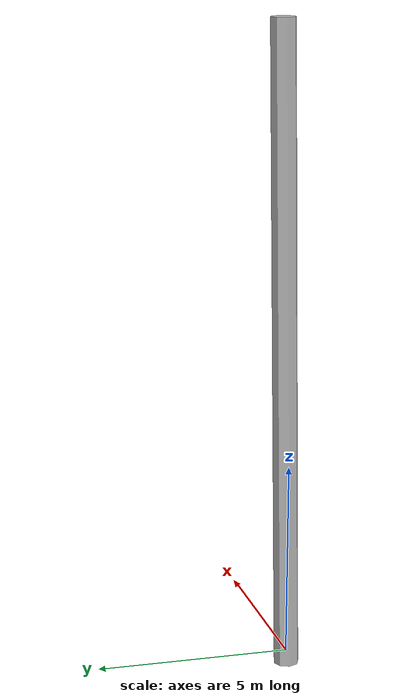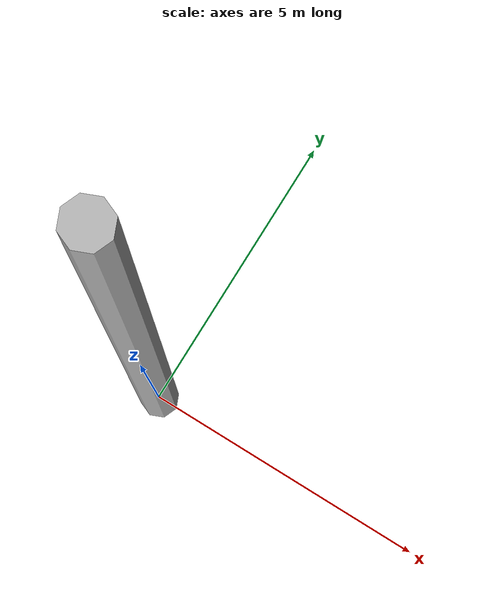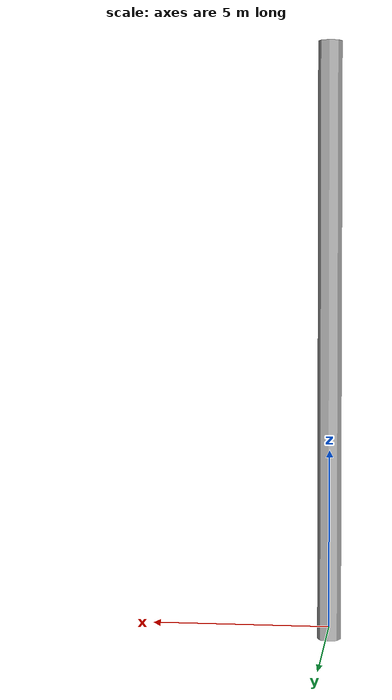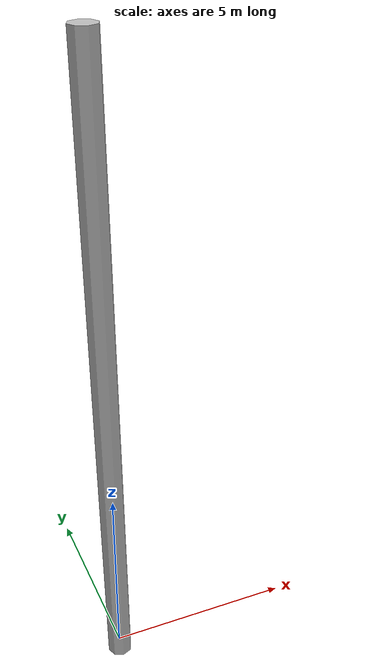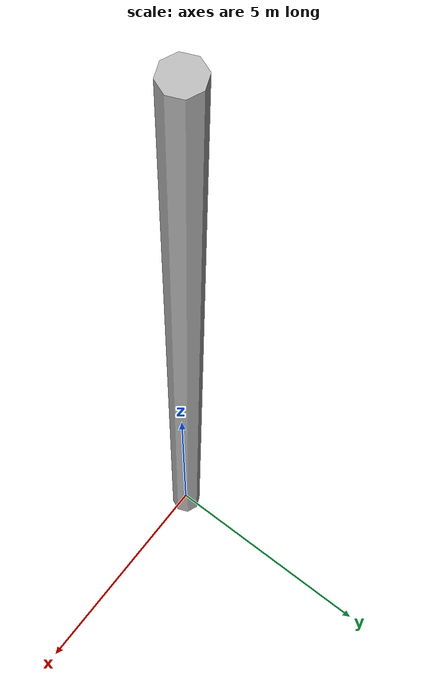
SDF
<?xml version='1.0'?>
<sdf version="1.4">
  <model name="park_tree_2">
    <static>true</static>
    <link name="link">
      <collision name="collision">
        <geometry>
          <mesh>
            <uri>model://park_tree_2/meshes/collision.dae</uri>
          </mesh>
        </geometry>
      </collision>
      <visual name="visual">
        <geometry>
          <mesh>
            <uri>model://park_tree_2/meshes/park_tree_2.dae</uri>
          </mesh>
        </geometry>
      </visual>
    </link>
  </model>
</sdf>
